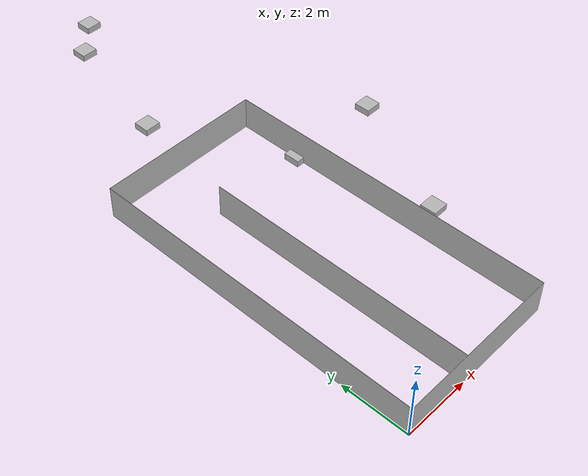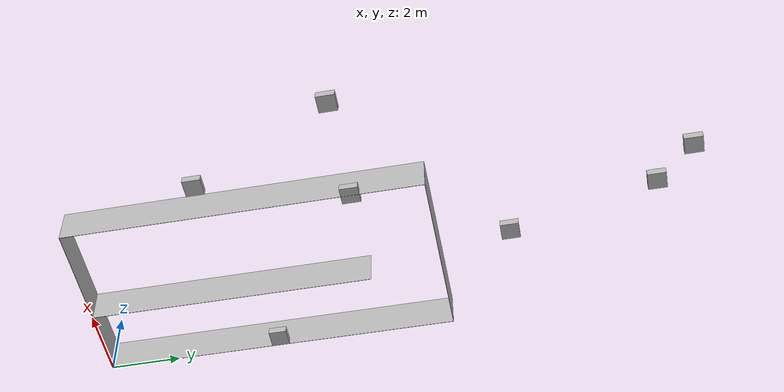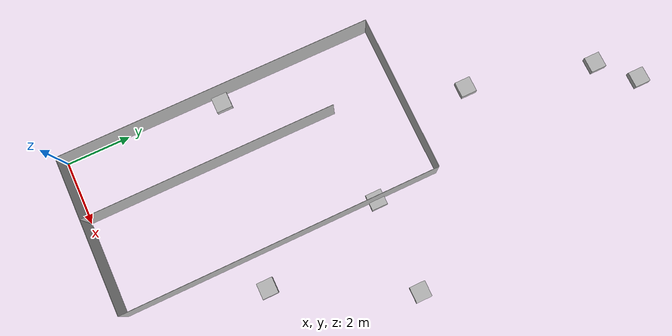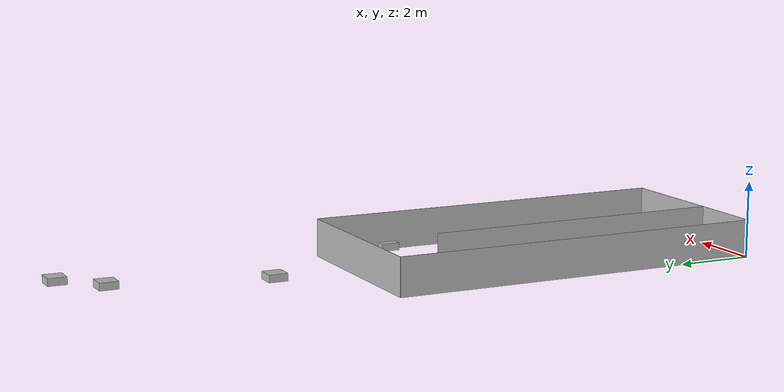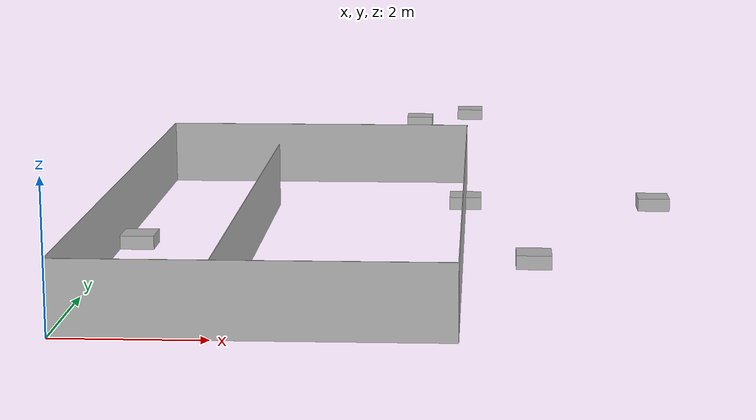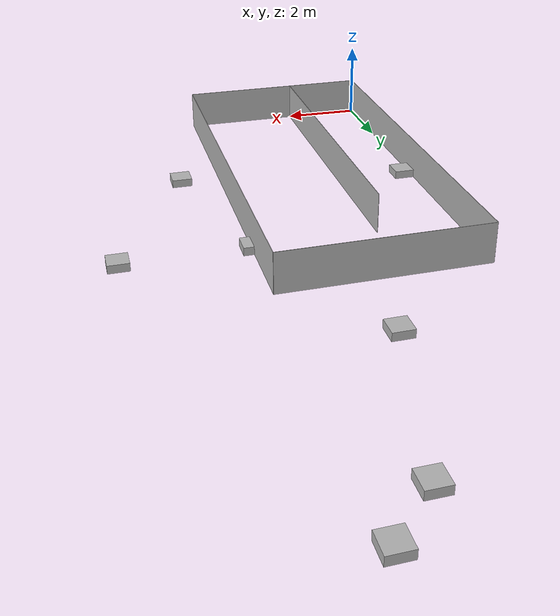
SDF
<sdf version="1.5">
  <model name="maze_map">
    <static>true</static>
    <link name="maze_link">
      <!-- ===================== BOUNDARY WALLS ===================== -->
      <!-- Left Boundary -->
      <collision name="wall_left_collision">
        <pose>0 5 0.5 0 0 0</pose>
        <geometry>
          <box>
            <size>0.01 10 1.0</size>
          </box>
        </geometry>
      </collision>
      <visual name="wall_left_visual">
        <pose>0 5 0.5 0 0 0</pose>
        <geometry>
          <box>
            <size>0.01 10 1.0</size>
          </box>
        </geometry>
      </visual>

      <!-- Right Boundary -->
      <collision name="wall_right_collision">
        <pose>5 5 0.5 0 0 0</pose>
        <geometry>
          <box>
            <size>0.01 10 1.0</size>
          </box>
        </geometry>
      </collision>
      <visual name="wall_right_visual">
        <pose>5 5 0.5 0 0 0</pose>
        <geometry>
          <box>
            <size>0.01 10 1.0</size>
          </box>
        </geometry>
      </visual>

      <!-- Bottom Boundary -->
      <collision name="wall_bottom_collision">
        <pose>2.5 0 0.5 0 0 0</pose>
        <geometry>
          <box>
            <size>5 0.01 1.0</size>
          </box>
        </geometry>
      </collision>
      <visual name="wall_bottom_visual">
        <pose>2.5 0 0.5 0 0 0</pose>
        <geometry>
          <box>
            <size>5 0.01 1.0</size>
          </box>
        </geometry>
      </visual>

      <!-- Top Boundary -->
      <collision name="wall_top_collision">
        <pose>2.5 10 0.5 0 0 0</pose>
        <geometry>
          <box>
            <size>5 0.01 1.0</size>
          </box>
        </geometry>
      </collision>
      <visual name="wall_top_visual">
        <pose>2.5 10 0.5 0 0 0</pose>
        <geometry>
          <box>
            <size>5 0.01 1.0</size>
          </box>
        </geometry>
      </visual>

      <!-- ===================== INTERNAL WALLS ===================== -->

      <!-- Wall 1 -->
      <collision name="wall_1_collision">
        <pose>2 4 0.5 0 0 0</pose>
        <geometry>
          <box>
            <size>0.01 8 1.0</size>
          </box>
        </geometry>
      </collision>
      <visual name="wall_1_visual">
        <pose>2 4 0.5 0 0 0</pose>
        <geometry>
          <box>
            <size>0.01 8 1.0</size>
          </box>
        </geometry>
      </visual>

      <!-- ===================== BOX OBSTACLES ===================== -->
      <!-- Box Obstacle 1 -->
      <collision name="box1_collision">
        <pose>0.25 5 0.1 0 0 0</pose>
        <geometry>
          <box>
            <size>0.5 0.5 0.2</size>
          </box>
        </geometry>
      </collision>
      <visual name="box1_visual">
        <pose>0.25 5 0.1 0 0 0</pose>
        <geometry>
          <box>
            <size>0.5 0.5 0.2</size>
          </box>
        </geometry>
      </visual>

      <!-- Box Obstacle 2 -->
      <collision name="box2_collision">
        <pose>8 8 0.1 0 0 0</pose>
        <geometry>
          <box>
            <size>0.5 0.5 0.2</size>
          </box>
        </geometry>
      </collision>
      <visual name="box2_visual">
        <pose>8 8 0.1 0 0 0</pose>
        <geometry>
          <box>
            <size>0.5 0.5 0.2</size>
          </box>
        </geometry>
      </visual>

      <!-- Box Obstacle 3 -->
      <collision name="box3_collision">
        <pose>4 16 0.1 0 0 0</pose>
        <geometry>
          <box>
            <size>0.5 0.5 0.2</size>
          </box>
        </geometry>
      </collision>
      <visual name="box3_visual">
        <pose>4 16 0.1 0 0 0</pose>
        <geometry>
          <box>
            <size>0.5 0.5 0.2</size>
          </box>
        </geometry>
      </visual>

      <!-- Box Obstacle 4 -->
      <collision name="box4_collision">
        <pose>6 4 0.1 0 0 0</pose>
        <geometry>
          <box>
            <size>0.5 0.5 0.2</size>
          </box>
        </geometry>
      </collision>
      <visual name="box4_visual">
        <pose>6 4 0.1 0 0 0</pose>
        <geometry>
          <box>
            <size>0.5 0.5 0.2</size>
          </box>
        </geometry>
      </visual>

      <!-- Box Obstacle 5 -->
      <collision name="box5_collision">
        <pose>3 12 0.1 0 0 0</pose>
        <geometry>
          <box>
            <size>0.5 0.5 0.2</size>
          </box>
        </geometry>
      </collision>
      <visual name="box5_visual">
        <pose>3 12 0.1 0 0 0</pose>
        <geometry>
          <box>
            <size>0.5 0.5 0.2</size>
          </box>
        </geometry>
      </visual>

      <!-- Box Obstacle 6 -->
      <collision name="box6_collision">
        <pose>5 8 0.1 0 0 0</pose>
        <geometry>
          <box>
            <size>0.5 0.5 0.2</size>
          </box>
        </geometry>
      </collision>
      <visual name="box6_visual">
        <pose>5 8 0.1 0 0 0</pose>
        <geometry>
          <box>
            <size>0.5 0.5 0.2</size>
          </box>
        </geometry>
      </visual>

      <!-- Box Obstacle 7 -->
      <collision name="box7_collision">
        <pose>5 17 0.1 0 0 0</pose>
        <geometry>
          <box>
            <size>0.5 0.5 0.2</size>
          </box>
        </geometry>
      </collision>
      <visual name="box7_visual">
        <pose>5 17 0.1 0 0 0</pose>
        <geometry>
          <box>
            <size>0.5 0.5 0.2</size>
          </box>
        </geometry>
      </visual>

    </link>
  </model>
</sdf>
